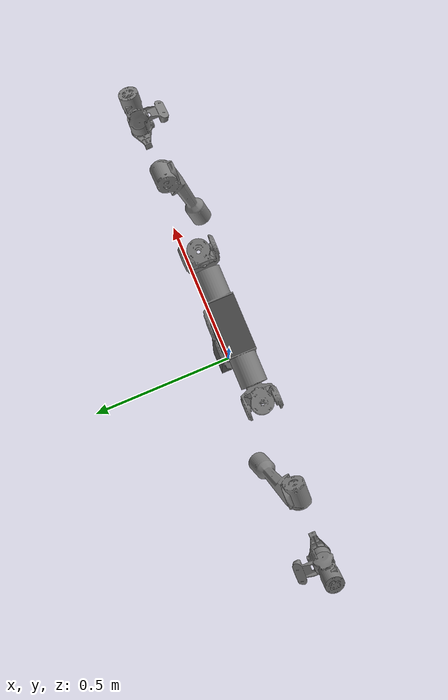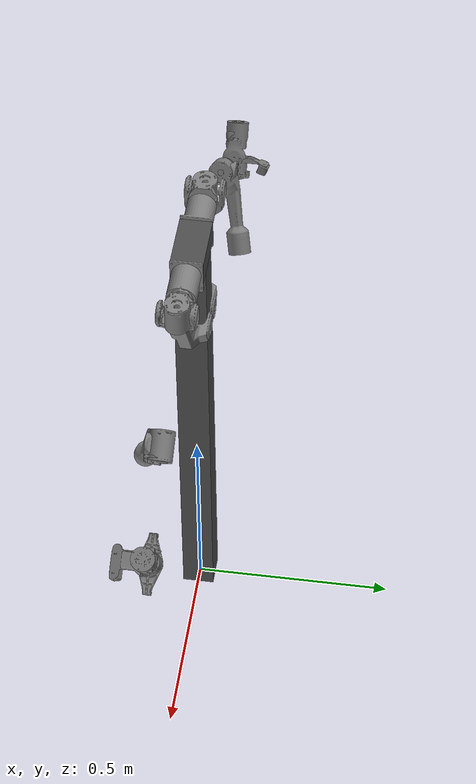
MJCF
<mujoco model="antt_t1">
  <compiler angle="radian" />
  <asset>
    <mesh name="t1_base_link" file="meshes/dae/base_link.dae" />
    <mesh name="t1_Link1" file="meshes/dae/link1.dae" />
    <mesh name="t1_Link2" file="meshes/dae/link2.dae" />
    <mesh name="t1_Link3" file="meshes/dae/link3.dae" />
    <mesh name="t1_Link4" file="meshes/dae/link4.dae" />
    <mesh name="t1_Link5" file="meshes/dae/link5.dae" />
    <mesh name="t1_Link6" file="meshes/dae/link6.dae" />
    <mesh name="t1_Link7" file="meshes/dae/link7.dae" />
    <material name="tbar" rgba="0.3 0.3 0.3 1" />
  </asset>

  <worldbody>
    <body name="t1_root" pos="0 0 0" quat="1 0 0 0">
      <geom size="0.075 0.04 0.03" pos="0 0 1.2" type="box" material="tbar" rgba="0.3 0.3 0.3 1" />
      <geom size="0.04 0.04 0.6" pos="0 0 0.6" type="box" material="tbar" rgba="0.3 0.3 0.3 1" />
      <geom pos="0.075 0 1.2" quat="0 0.707107 0 0.707107" type="mesh" mesh="t1_base_link" />
      <geom pos="-0.075 0 1.2" quat="0.707107 0 -0.707107 0" type="mesh" mesh="t1_base_link" />

      <body name="t1_left_link1" pos="0.213 0 1.2" quat="0 0.707107 0 0.707107">
        <inertial pos="-0.00077 -0.00006 -0.00686" mass="0.77" diaginertia="0.0006669 0.00054501 0.00051509" />
        <joint name="t1_left_joint1" pos="0 0 0" axis="0 0 1" range="-2.7 2.7" armature="0.010294488" damping="0.05" frictionloss="0.2" />
        <geom type="mesh" mesh="t1_Link1" />
        <body name="t1_left_link2" quat="0.20899608 0.20899519 0.6755138 -0.67551666">
          <inertial pos="-0.00011 -0.06072 0.00148" quat="0.707107 0.707107 0 0" mass="0.49" diaginertia="0.00053808 0.00040266 0.00029435" />
          <joint name="t1_left_joint2" pos="0 0 0" axis="0 0 1" range="-1.74 1.74" armature="0.023589557" damping="0.05" frictionloss="0.2" />
          <geom type="mesh" mesh="t1_Link2" />
          <body name="t1_left_link3" pos="0 -0.31 0" quat="-0.00000259734 0.00000259735 -0.707108 0.707105">
            <inertial pos="0.00014 0.00211 -0.04853" mass="0.67" diaginertia="0.00342528 0.0033924 0.00026169" />
            <joint name="t1_left_joint3" pos="0 0 0" axis="0 0 1" range="-2.75 2.75" armature="0.16014287" damping="0.05" frictionloss="0.2" />
            <geom type="mesh" mesh="t1_Link3" />
            <body name="t1_left_link4" quat="-0.00000259734 0.00000259735 -0.707108 0.707105">
              <inertial pos="-0.00013 -0.05482 0.00132" quat="0.707107 0.707107 0 0" mass="0.41" diaginertia="0.00031331 0.0002393 0.00013204" />
              <joint name="t1_left_joint4" pos="0 0 0" axis="0 0 1" range="-1.01 2.14" armature="0.04430987" damping="0.05" frictionloss="0.2" />
              <geom type="mesh" mesh="t1_Link4" />
              <body name="t1_left_link5" pos="0 -0.27001 0" quat="0.499998 0.5 -0.5 0.500002">
                <inertial pos="0.00303 0.00617 -0.11778" mass="0.56" diaginertia="0.0008249 0.00078548 0.00021015" />
                <joint name="t1_left_joint5" pos="0 0 0" axis="0 0 1" range="-2.75 2.75" armature="0.048632562" damping="0.05" frictionloss="0.2" />
                <geom type="mesh" mesh="t1_Link5" />
                <body name="t1_left_link6" quat="0.499998 0.5 -0.5 0.500002">
                  <inertial pos="0.00014 -0.0027 -0.00025" quat="0.707107 0.707107 0 0" mass="0.31" diaginertia="0.00008181 0.00007906 0.00007176" />
                  <joint name="t1_left_joint6" pos="0 0 0" axis="0 0 1" range="-0.73 0.95" armature="0.01" damping="0.05" frictionloss="0.1" />
                  <geom type="mesh" mesh="t1_Link6" />
                  <body name="t1_left_link7" pos="0 -0.0235 0" quat="0.707105 0.707108 0 0">
                    <inertial pos="-0.00014 -0.0001 -0.00275" quat="0.5 0.5 -0.5 0.5" mass="0.000001" diaginertia="0.0000002 0.00000011 0.00000011" />
                    <joint name="t1_left_joint7" pos="0 0 0" axis="0 0 1" range="-1.57 1.57" armature="0.01" damping="0.05" frictionloss="0.1" />
                    <geom type="mesh" mesh="t1_Link7" />
                  </body>
                </body>
              </body>
            </body>
          </body>
        </body>
      </body>

      <body name="t1_right_link1" pos="-0.213 0 1.2" quat="0.707107 0 -0.707107 0">
        <inertial pos="-0.00077 -0.00006 -0.00686" mass="0.77" diaginertia="0.0006669 0.00054501 0.00051509" />
        <joint name="t1_right_joint1" pos="0 0 0" axis="0 0 1" range="-2.7 2.7" armature="0.010294488" damping="0.05" frictionloss="0.2" />
        <geom type="mesh" mesh="t1_Link1" />
        <body name="t1_right_link2" quat="0.20899608 0.20899519 0.6755138 -0.67551666">
          <inertial pos="-0.00011 -0.06072 0.00148" quat="0.707107 0.707107 0 0" mass="0.49" diaginertia="0.00053808 0.00040266 0.00029435" />
          <joint name="t1_right_joint2" pos="0 0 0" axis="0 0 1" range="-1.74 1.74" armature="0.023589557" damping="0.05" frictionloss="0.2" />
          <geom type="mesh" mesh="t1_Link2" />
          <body name="t1_right_link3" pos="0 -0.31 0" quat="-0.00000259734 0.00000259735 -0.707108 0.707105">
            <inertial pos="0.00014 0.00211 -0.04853" mass="0.67" diaginertia="0.00342528 0.0033924 0.00026169" />
            <joint name="t1_right_joint3" pos="0 0 0" axis="0 0 1" range="-2.75 2.75" armature="0.16014287" damping="0.05" frictionloss="0.2" />
            <geom type="mesh" mesh="t1_Link3" />
            <body name="t1_right_link4" quat="-0.00000259734 0.00000259735 -0.707108 0.707105">
              <inertial pos="-0.00013 -0.05482 0.00132" quat="0.707107 0.707107 0 0" mass="0.41" diaginertia="0.00031331 0.0002393 0.00013204" />
              <joint name="t1_right_joint4" pos="0 0 0" axis="0 0 1" range="-1.01 2.14" armature="0.04430987" damping="0.05" frictionloss="0.2" />
              <geom type="mesh" mesh="t1_Link4" />
              <body name="t1_right_link5" pos="0 -0.27001 0" quat="0.499998 0.5 -0.5 0.500002">
                <inertial pos="0.00303 0.00617 -0.11778" mass="0.56" diaginertia="0.0008249 0.00078548 0.00021015" />
                <joint name="t1_right_joint5" pos="0 0 0" axis="0 0 1" range="-2.75 2.75" armature="0.048632562" damping="0.05" frictionloss="0.2" />
                <geom type="mesh" mesh="t1_Link5" />
                <body name="t1_right_link6" quat="0.499998 0.5 -0.5 0.500002">
                  <inertial pos="0.00014 -0.0027 -0.00025" quat="0.707107 0.707107 0 0" mass="0.31" diaginertia="0.00008181 0.00007906 0.00007176" />
                  <joint name="t1_right_joint6" pos="0 0 0" axis="0 0 1" range="-0.73 0.95" armature="0.01" damping="0.05" frictionloss="0.1" />
                  <geom type="mesh" mesh="t1_Link6" />
                  <body name="t1_right_link7" pos="0 -0.0235 0" quat="0.707105 0.707108 0 0">
                    <inertial pos="-0.00014 -0.0001 -0.00275" quat="0.5 0.5 -0.5 0.5" mass="0.000001" diaginertia="0.0000002 0.00000011 0.00000011" />
                    <joint name="t1_right_joint7" pos="0 0 0" axis="0 0 1" range="-1.57 1.57" armature="0.01" damping="0.05" frictionloss="0.1" />
                    <geom type="mesh" mesh="t1_Link7" />
                  </body>
                </body>
              </body>
            </body>
          </body>
        </body>
      </body>
    </body>
  </worldbody>

  <actuator>
    <motor name="t1_left_joint1" joint="t1_left_joint1" ctrlrange="-60 60" />
    <motor name="t1_left_joint2" joint="t1_left_joint2" ctrlrange="-60 60" />
    <motor name="t1_left_joint3" joint="t1_left_joint3" ctrlrange="-100 100" />
    <motor name="t1_left_joint4" joint="t1_left_joint4" ctrlrange="-60 60" />
    <motor name="t1_left_joint5" joint="t1_left_joint5" ctrlrange="-50 50" />
    <motor name="t1_left_joint6" joint="t1_left_joint6" ctrlrange="-20 20" />
    <motor name="t1_left_joint7" joint="t1_left_joint7" ctrlrange="-15 15" />

    <motor name="t1_right_joint1" joint="t1_right_joint1" ctrlrange="-60 60" />
    <motor name="t1_right_joint2" joint="t1_right_joint2" ctrlrange="-60 60" />
    <motor name="t1_right_joint3" joint="t1_right_joint3" ctrlrange="-100 100" />
    <motor name="t1_right_joint4" joint="t1_right_joint4" ctrlrange="-60 60" />
    <motor name="t1_right_joint5" joint="t1_right_joint5" ctrlrange="-50 50" />
    <motor name="t1_right_joint6" joint="t1_right_joint6" ctrlrange="-20 20" />
    <motor name="t1_right_joint7" joint="t1_right_joint7" ctrlrange="-15 15" />
  </actuator>

</mujoco>
